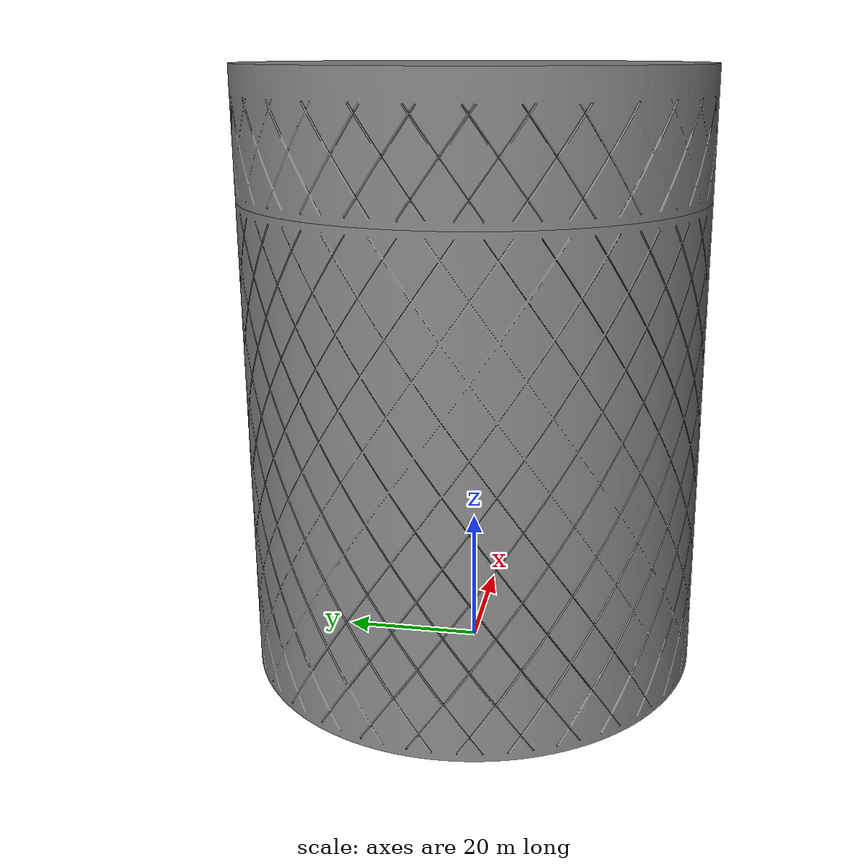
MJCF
<?xml version='1.0' encoding='utf-8'?>
<mujoco model="bit_holder">
  <compiler angle="degree" coordinate="local" />
  <asset>
    <mesh name="body_mesh" file="../../../models/bit_holder_body/outputs/bit_holder_body.stl" />
    <mesh name="lid_mesh" file="../../../models/bit_holder_lid/outputs/bit_holder_lid.stl" />
  </asset>
  <worldbody>
    <body name="body" pos="0 0 0" euler="0 0 0">
      <geom name="body_geom" type="mesh" mesh="body_mesh" />
      <site name="body_interfaces_lid_neck_axis" pos="0 0 69" size="0.5" />
      <site name="body_interfaces_lid_neck_outer_cylinder" pos="0 0 76.5" size="0.5" />
    </body>
    <body name="lid" pos="0 0 69" euler="0 0 0">
      <geom name="lid_geom" type="mesh" mesh="lid_mesh" />
      <site name="lid_interfaces_recess_axis" pos="0 0 0" size="0.5" />
      <site name="lid_interfaces_recess_inner_cylinder" pos="0 0 7.5" size="0.5" />
    </body>
  </worldbody>
</mujoco>
